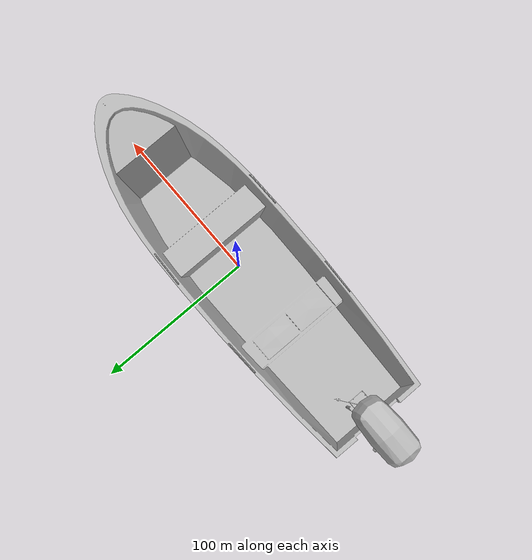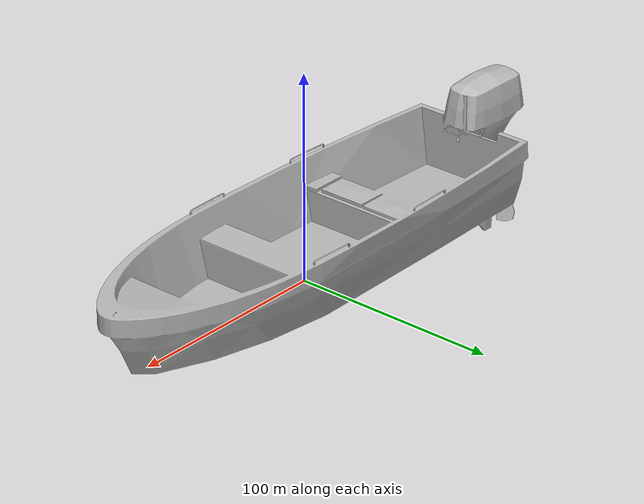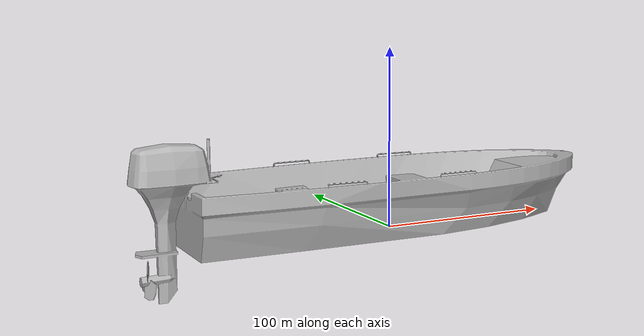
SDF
<?xml version="1.0" ?>
<sdf version="1.5">
  <model name="simple3">
    <static>true</static>
    <link name="link">
      <collision name="simple3_collision">
        <pose>0 0 0.1 0 0 0</pose>
        <geometry>
          <mesh>
	     <uri>model://simple_boat/meshes/simple3.stl</uri>
          </mesh>
        </geometry>
      </collision>

      <visual name="simple3_visual">
        <cast_shadows>false</cast_shadows>
        <pose>0 0 0.1 0 0 0</pose>
        <geometry>
          <mesh>
	     <uri>model://simple_boat/meshes/simple3.dae</uri>
          </mesh>
        </geometry>

      </visual>
    </link>
  </model>
</sdf>
